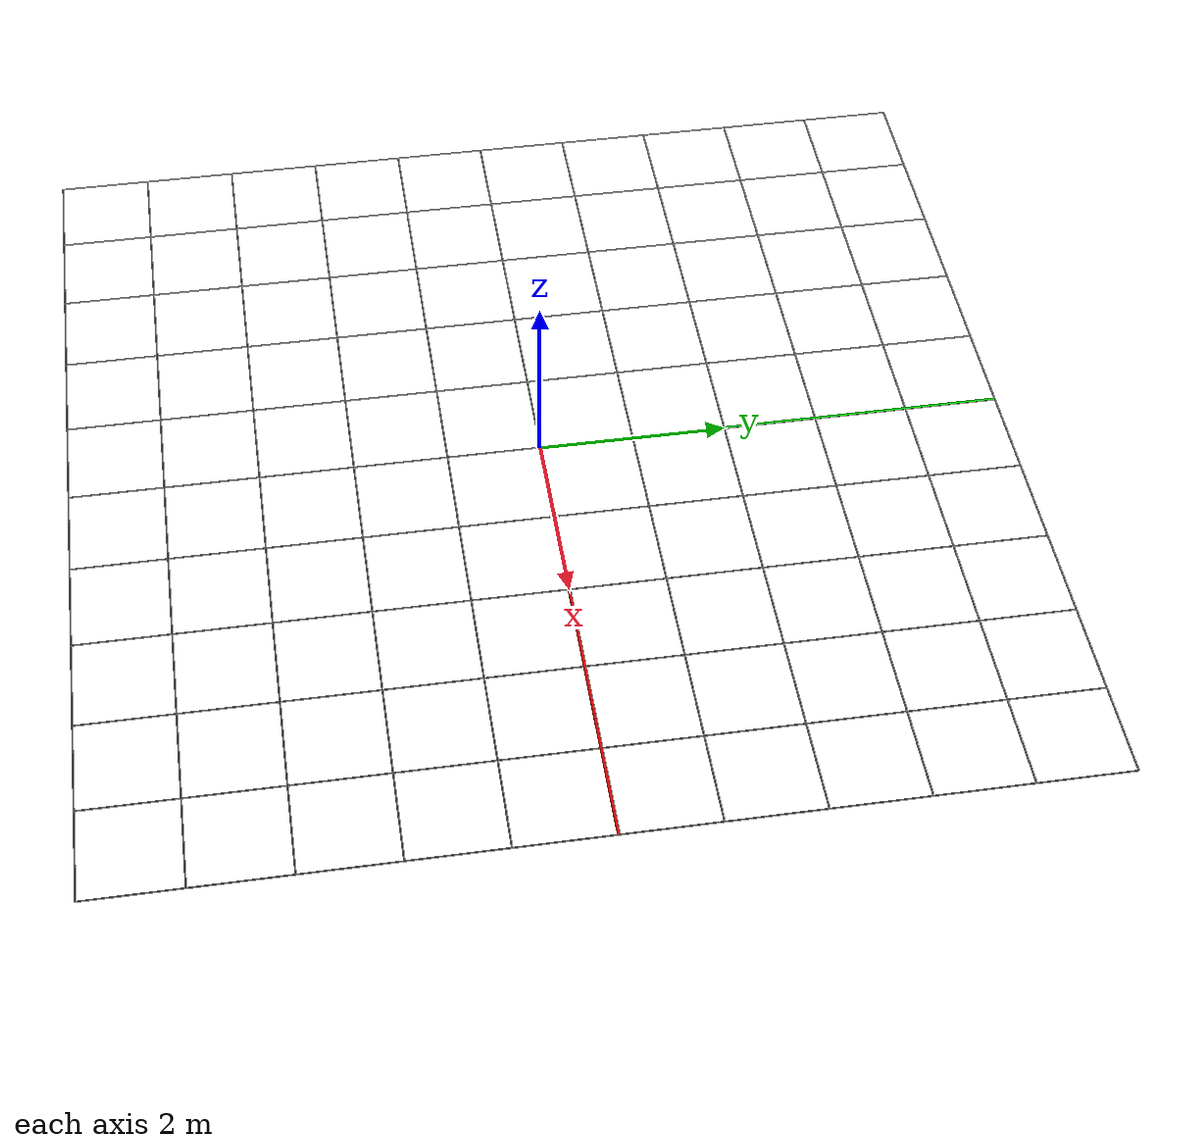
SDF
<?xml version="1.0"?>
<sdf version="1.6">
    <model name="d3im3r_grid">
        <static>true</static>

        <!-- Lines parallel to X axis: y = constant -->
        <link name="grid_x">
            <visual name="x_-5">
                <pose>0 -5 0.006 0 0 0</pose>
                <geometry>
                    <box>
                        <size>10 0.015 0.002</size>
                    </box>
                </geometry>
                <material>
                    <ambient>0.05 0.05 0.05 1</ambient>
                    <diffuse>0.05 0.05 0.05 1</diffuse>
                </material>
            </visual>

            <visual name="x_-4">
                <pose>0 -4 0.006 0 0 0</pose>
                <geometry>
                    <box>
                        <size>10 0.015 0.002</size>
                    </box>
                </geometry>
                <material>
                    <ambient>0.05 0.05 0.05 1</ambient>
                    <diffuse>0.05 0.05 0.05 1</diffuse>
                </material>
            </visual>

            <visual name="x_-3">
                <pose>0 -3 0.006 0 0 0</pose>
                <geometry>
                    <box>
                        <size>10 0.015 0.002</size>
                    </box>
                </geometry>
                <material>
                    <ambient>0.05 0.05 0.05 1</ambient>
                    <diffuse>0.05 0.05 0.05 1</diffuse>
                </material>
            </visual>

            <visual name="x_-2">
                <pose>0 -2 0.006 0 0 0</pose>
                <geometry>
                    <box>
                        <size>10 0.015 0.002</size>
                    </box>
                </geometry>
                <material>
                    <ambient>0.05 0.05 0.05 1</ambient>
                    <diffuse>0.05 0.05 0.05 1</diffuse>
                </material>
            </visual>

            <visual name="x_-1">
                <pose>0 -1 0.006 0 0 0</pose>
                <geometry>
                    <box>
                        <size>10 0.015 0.002</size>
                    </box>
                </geometry>
                <material>
                    <ambient>0.05 0.05 0.05 1</ambient>
                    <diffuse>0.05 0.05 0.05 1</diffuse>
                </material>
            </visual>

            <!-- Positive X axis: from x = 0 to x = 5, y = 0 -->
            <visual name="positive_x_axis">
                <pose>2.5 0 0.008 0 0 0</pose>
                <geometry>
                    <box>
                        <size>5 0.030 0.004</size>
                    </box>
                </geometry>
                <material>
                    <ambient>0.8 0.0 0.0 1</ambient>
                    <diffuse>0.8 0.0 0.0 1</diffuse>
                </material>
            </visual>

            <!-- Negative side of y = 0 remains as a normal grid line -->
            <visual name="negative_x_axis_grid">
                <pose>-2.5 0 0.006 0 0 0</pose>
                <geometry>
                    <box>
                        <size>5 0.015 0.002</size>
                    </box>
                </geometry>
                <material>
                    <ambient>0.05 0.05 0.05 1</ambient>
                    <diffuse>0.05 0.05 0.05 1</diffuse>
                </material>
            </visual>

            <visual name="x_1">
                <pose>0 1 0.006 0 0 0</pose>
                <geometry>
                    <box>
                        <size>10 0.015 0.002</size>
                    </box>
                </geometry>
                <material>
                    <ambient>0.05 0.05 0.05 1</ambient>
                    <diffuse>0.05 0.05 0.05 1</diffuse>
                </material>
            </visual>

            <visual name="x_2">
                <pose>0 2 0.006 0 0 0</pose>
                <geometry>
                    <box>
                        <size>10 0.015 0.002</size>
                    </box>
                </geometry>
                <material>
                    <ambient>0.05 0.05 0.05 1</ambient>
                    <diffuse>0.05 0.05 0.05 1</diffuse>
                </material>
            </visual>

            <visual name="x_3">
                <pose>0 3 0.006 0 0 0</pose>
                <geometry>
                    <box>
                        <size>10 0.015 0.002</size>
                    </box>
                </geometry>
                <material>
                    <ambient>0.05 0.05 0.05 1</ambient>
                    <diffuse>0.05 0.05 0.05 1</diffuse>
                </material>
            </visual>

            <visual name="x_4">
                <pose>0 4 0.006 0 0 0</pose>
                <geometry>
                    <box>
                        <size>10 0.015 0.002</size>
                    </box>
                </geometry>
                <material>
                    <ambient>0.05 0.05 0.05 1</ambient>
                    <diffuse>0.05 0.05 0.05 1</diffuse>
                </material>
            </visual>

            <visual name="x_5">
                <pose>0 5 0.006 0 0 0</pose>
                <geometry>
                    <box>
                        <size>10 0.015 0.002</size>
                    </box>
                </geometry>
                <material>
                    <ambient>0.05 0.05 0.05 1</ambient>
                    <diffuse>0.05 0.05 0.05 1</diffuse>
                </material>
            </visual>
        </link>

        <!-- Lines parallel to Y axis: x = constant -->
        <link name="grid_y">
            <visual name="y_-5">
                <pose>-5 0 0.006 0 0 0</pose>
                <geometry>
                    <box>
                        <size>0.015 10 0.002</size>
                    </box>
                </geometry>
                <material>
                    <ambient>0.05 0.05 0.05 1</ambient>
                    <diffuse>0.05 0.05 0.05 1</diffuse>
                </material>
            </visual>

            <visual name="y_-4">
                <pose>-4 0 0.006 0 0 0</pose>
                <geometry>
                    <box>
                        <size>0.015 10 0.002</size>
                    </box>
                </geometry>
                <material>
                    <ambient>0.05 0.05 0.05 1</ambient>
                    <diffuse>0.05 0.05 0.05 1</diffuse>
                </material>
            </visual>

            <visual name="y_-3">
                <pose>-3 0 0.006 0 0 0</pose>
                <geometry>
                    <box>
                        <size>0.015 10 0.002</size>
                    </box>
                </geometry>
                <material>
                    <ambient>0.05 0.05 0.05 1</ambient>
                    <diffuse>0.05 0.05 0.05 1</diffuse>
                </material>
            </visual>

            <visual name="y_-2">
                <pose>-2 0 0.006 0 0 0</pose>
                <geometry>
                    <box>
                        <size>0.015 10 0.002</size>
                    </box>
                </geometry>
                <material>
                    <ambient>0.05 0.05 0.05 1</ambient>
                    <diffuse>0.05 0.05 0.05 1</diffuse>
                </material>
            </visual>

            <visual name="y_-1">
                <pose>-1 0 0.006 0 0 0</pose>
                <geometry>
                    <box>
                        <size>0.015 10 0.002</size>
                    </box>
                </geometry>
                <material>
                    <ambient>0.05 0.05 0.05 1</ambient>
                    <diffuse>0.05 0.05 0.05 1</diffuse>
                </material>
            </visual>

            <!-- Positive Y axis: from y = 0 to y = 5, x = 0 -->
            <visual name="positive_y_axis">
                <pose>0 2.5 0.008 0 0 0</pose>
                <geometry>
                    <box>
                        <size>0.030 5 0.004</size>
                    </box>
                </geometry>
                <material>
                    <ambient>0.0 0.8 0.0 1</ambient>
                    <diffuse>0.0 0.8 0.0 1</diffuse>
                </material>
            </visual>

            <!-- Negative side of x = 0 remains as a normal grid line -->
            <visual name="negative_y_axis_grid">
                <pose>0 -2.5 0.006 0 0 0</pose>
                <geometry>
                    <box>
                        <size>0.015 5 0.002</size>
                    </box>
                </geometry>
                <material>
                    <ambient>0.05 0.05 0.05 1</ambient>
                    <diffuse>0.05 0.05 0.05 1</diffuse>
                </material>
            </visual>

            <visual name="y_1">
                <pose>1 0 0.006 0 0 0</pose>
                <geometry>
                    <box>
                        <size>0.015 10 0.002</size>
                    </box>
                </geometry>
                <material>
                    <ambient>0.05 0.05 0.05 1</ambient>
                    <diffuse>0.05 0.05 0.05 1</diffuse>
                </material>
            </visual>

            <visual name="y_2">
                <pose>2 0 0.006 0 0 0</pose>
                <geometry>
                    <box>
                        <size>0.015 10 0.002</size>
                    </box>
                </geometry>
                <material>
                    <ambient>0.05 0.05 0.05 1</ambient>
                    <diffuse>0.05 0.05 0.05 1</diffuse>
                </material>
            </visual>

            <visual name="y_3">
                <pose>3 0 0.006 0 0 0</pose>
                <geometry>
                    <box>
                        <size>0.015 10 0.002</size>
                    </box>
                </geometry>
                <material>
                    <ambient>0.05 0.05 0.05 1</ambient>
                    <diffuse>0.05 0.05 0.05 1</diffuse>
                </material>
            </visual>

            <visual name="y_4">
                <pose>4 0 0.006 0 0 0</pose>
                <geometry>
                    <box>
                        <size>0.015 10 0.002</size>
                    </box>
                </geometry>
                <material>
                    <ambient>0.05 0.05 0.05 1</ambient>
                    <diffuse>0.05 0.05 0.05 1</diffuse>
                </material>
            </visual>

            <visual name="y_5">
                <pose>5 0 0.006 0 0 0</pose>
                <geometry>
                    <box>
                        <size>0.015 10 0.002</size>
                    </box>
                </geometry>
                <material>
                    <ambient>0.05 0.05 0.05 1</ambient>
                    <diffuse>0.05 0.05 0.05 1</diffuse>
                </material>
            </visual>
        </link>

    </model>
</sdf>
